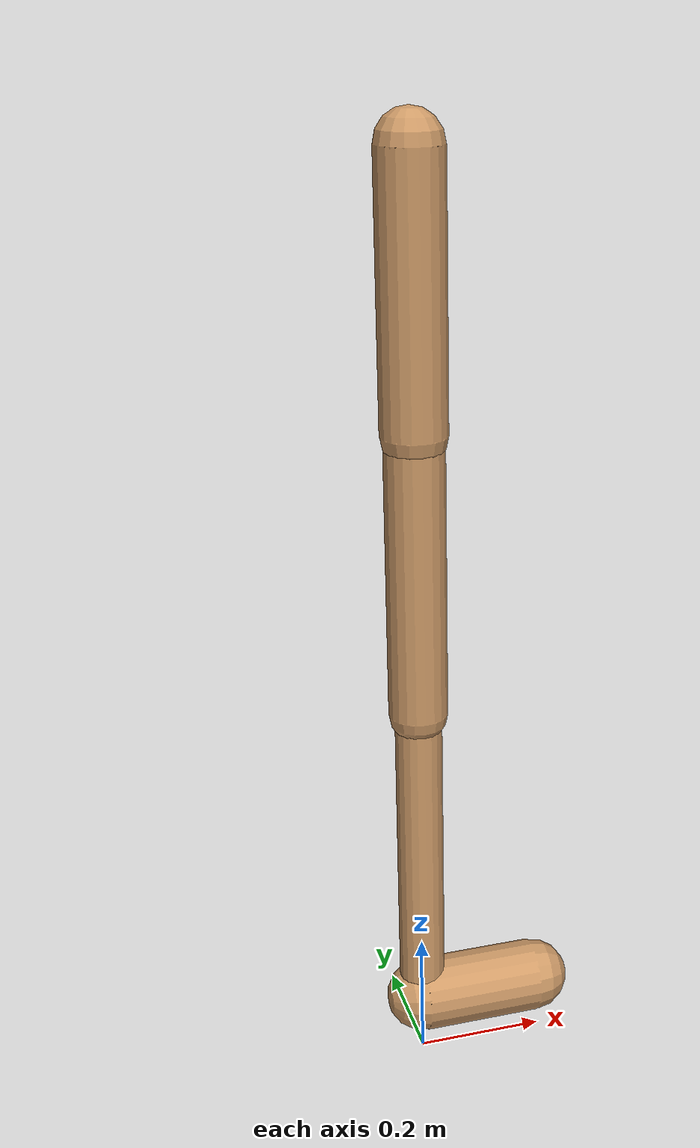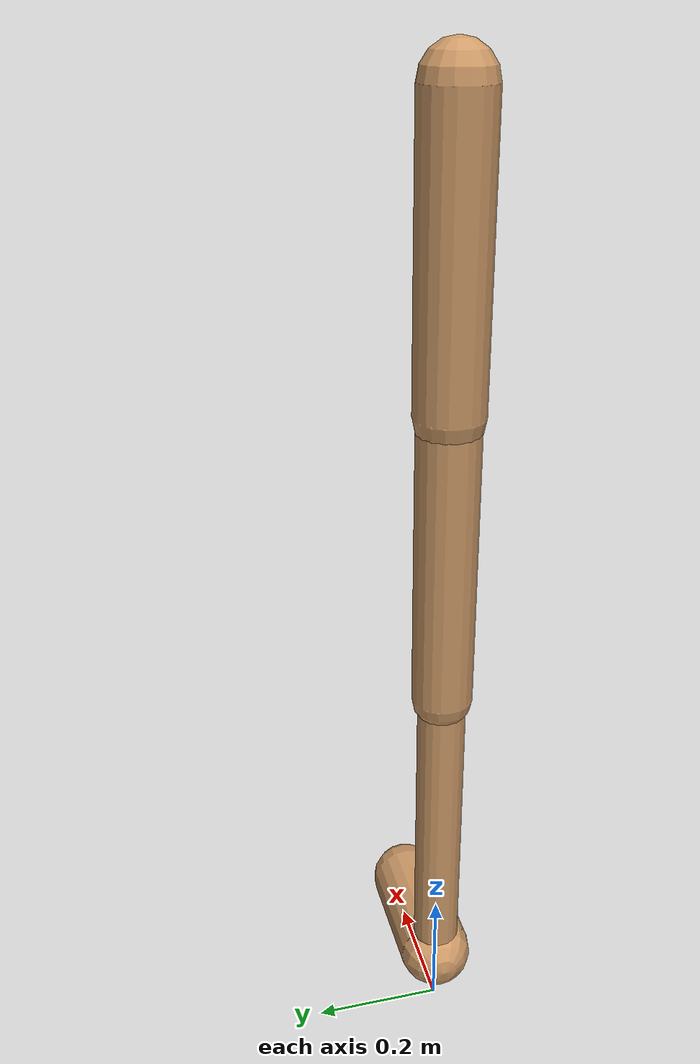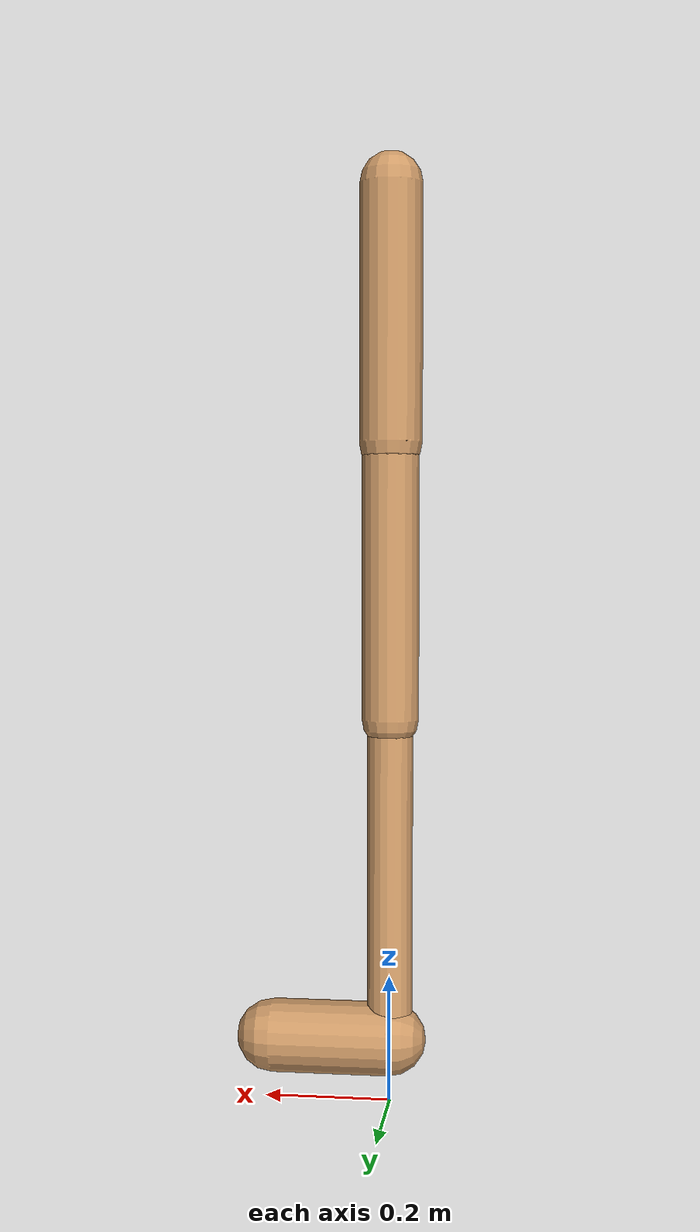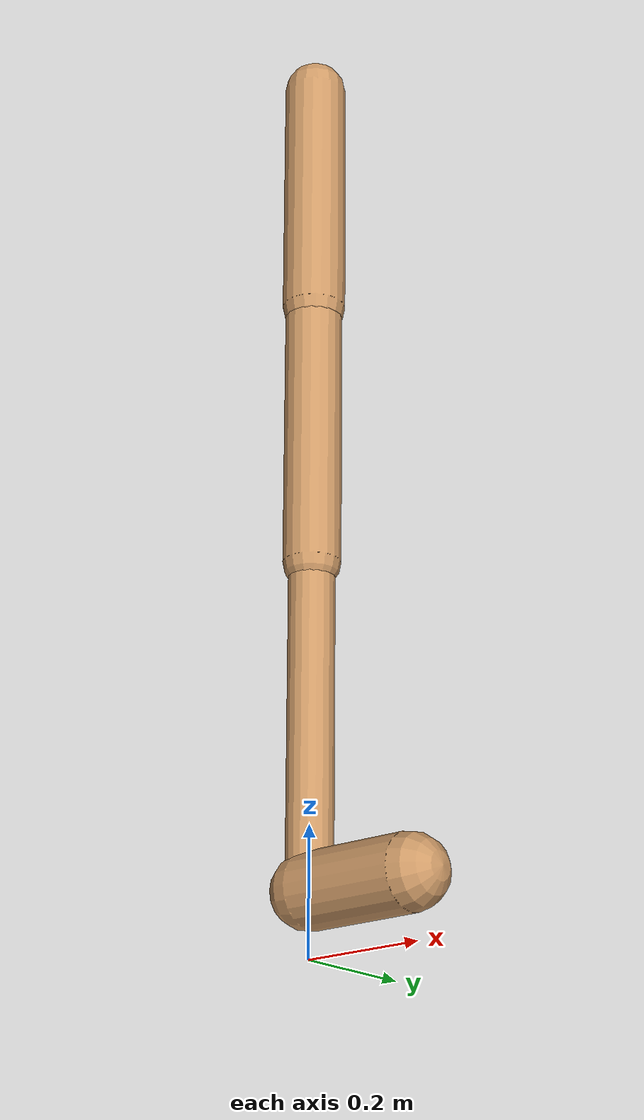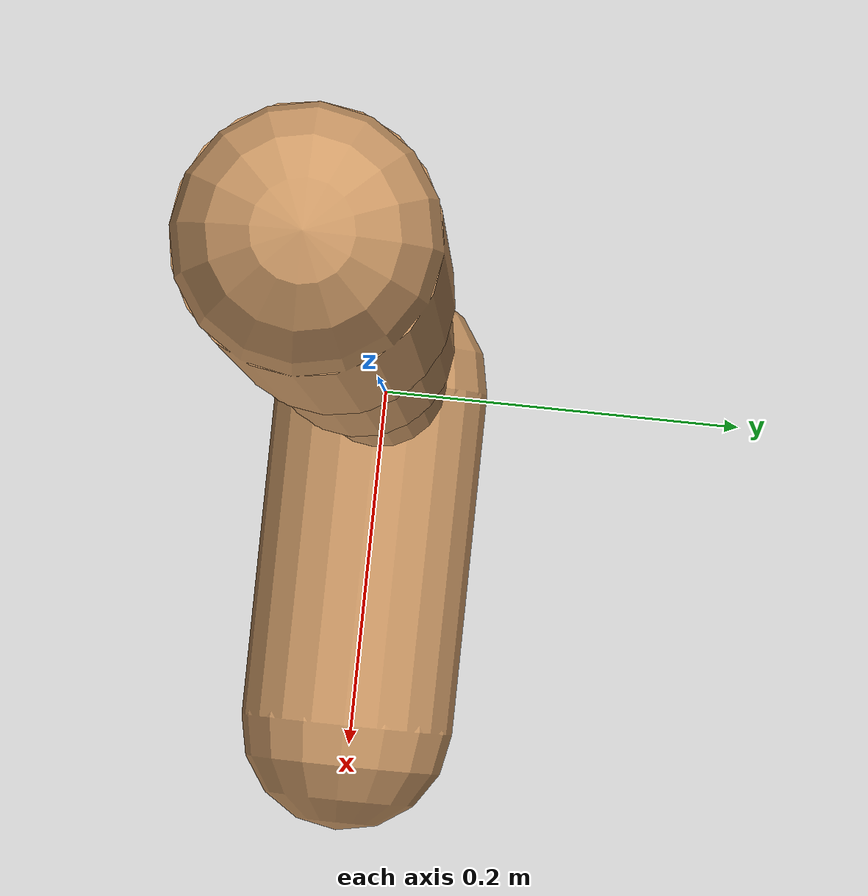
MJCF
<mujoco model="walker2d">
  <compiler angle="degree" coordinate="global" inertiafromgeom="true" />
  <default>
    <joint armature="0.01" damping=".1" limited="true" />
    <geom conaffinity="0" condim="3" contype="1" density="1000" friction="0.8 .1 .1" rgba="0.8 0.6 .4 1" />
  </default>
  <option integrator="RK4" timestep="0.002" />
  <worldbody>

    <body name="torso" pos="0 0 -0.02689434244064172">
      <joint armature="0" axis="1 0 0" damping="0" limited="false" name="ignorex" pos="0 0 0" stiffness="0" type="slide" />
      <joint armature="0" axis="0 0 1" damping="0" limited="false" name="ignorez" pos="0 0 0" ref="1.25" stiffness="0" type="slide" />
      <joint armature="0" axis="0 1 0" damping="0" limited="false" name="ignorey" pos="0 0 0" stiffness="0" type="hinge" />
      <geom fromto="0 0 1.45 0 0 1.05" name="torso_geom" size="0.049746038087542646" type="capsule" />
      <body name="thigh">
        <joint axis="0 -1 0" name="thigh_joint" pos="0 0 1.05" range="-150 0" type="hinge" />
        <geom fromto="0.0 0.0 1.05 0.0 0.0 0.6127394253666197" name="thigh_geom" size="0.04507381919935653" type="capsule" />
        <body name="leg" pos="0.0 0.0 0.012739425366619761">
          <joint axis="0 -1 0" name="leg_joint" pos="0 0 0.6" range="-150 0" type="hinge" />
          <geom fromto="0.0 0.0 0.6 0.0 0.0 0.11415491707402196" name="leg_geom" size="0.036059055359485226" type="capsule" />
          <body name="foot" pos="0.0 0.0 0.014154917074021958">
            <joint axis="0 -1 0" name="foot_joint" pos="0 0 0.1" range="-45 45" type="hinge" />
            <geom fromto="0.0 0.0 0.1 0.18817232161955602 0.0 0.1" name="foot_geom" size="0.05805316336792087" type="capsule" />
          </body>
        </body>
      </body>

      <body name="thigh_left">
        <joint axis="0 -1 0" name="thigh_left_joint" pos="0 0 1.05" range="-150 0" type="hinge" />
        <geom fromto="0.0 0.0 1.05 0.0 0.0 0.6127394253666197" name="thigh_left_geom" rgba=".7 .3 .6 1" size="0.04507381919935653" type="capsule" />
        <body name="leg_left" pos="0.0 0.0 0.012739425366619761">
          <joint axis="0 -1 0" name="leg_left_joint" pos="0 0 0.6" range="-150 0" type="hinge" />
          <geom fromto="0.0 0.0 0.6 0.0 0.0 0.11415491707402196" name="leg_left_geom" rgba=".7 .3 .6 1" size="0.036059055359485226" type="capsule" />
          <body name="foot_left" pos="0.0 0.0 0.014154917074021958">
            <joint axis="0 -1 0" name="foot_left_joint" pos="0 0 0.1" range="-45 45" type="hinge" />
            <geom fromto="0.0 0.0 0.1 0.18817232161955602 0.0 0.1" name="foot_left_geom" rgba=".7 .3 .6 1" size="0.05805316336792087" type="capsule" />
          </body>
        </body>
      </body>
    </body>
  </worldbody>
  <actuator>

    <motor ctrllimited="true" ctrlrange="-1.0 1.0" gear="100" joint="thigh_joint" />
    <motor ctrllimited="true" ctrlrange="-1.0 1.0" gear="100" joint="leg_joint" />
    <motor ctrllimited="true" ctrlrange="-1.0 1.0" gear="100" joint="foot_joint" />
    <motor ctrllimited="true" ctrlrange="-1.0 1.0" gear="100" joint="thigh_left_joint" />
    <motor ctrllimited="true" ctrlrange="-1.0 1.0" gear="100" joint="leg_left_joint" />
    <motor ctrllimited="true" ctrlrange="-1.0 1.0" gear="100" joint="foot_left_joint" />

  </actuator>
</mujoco>
